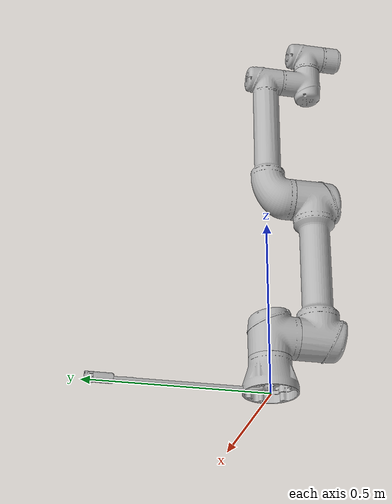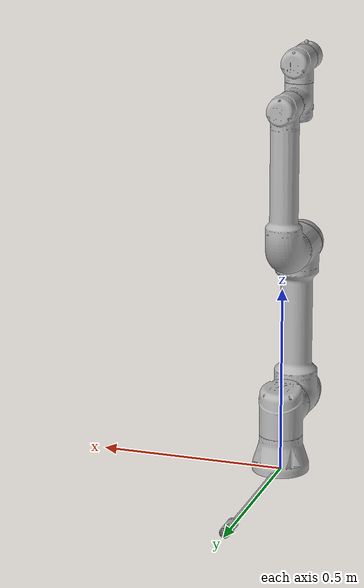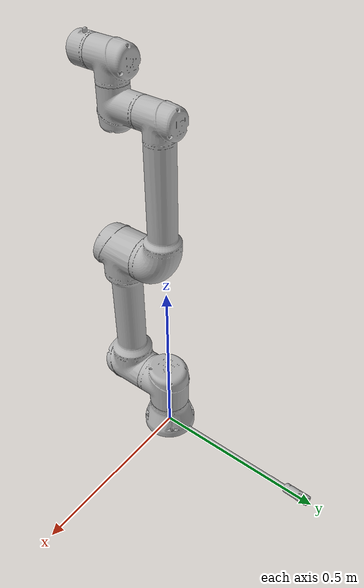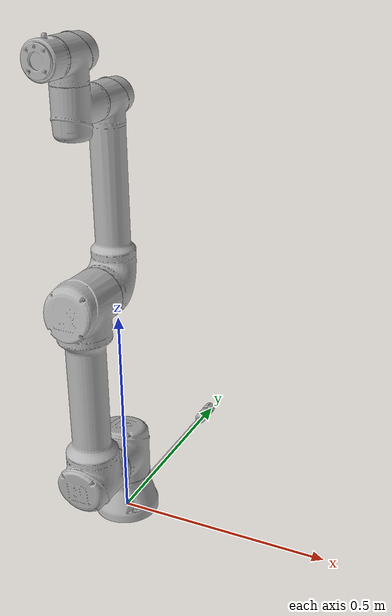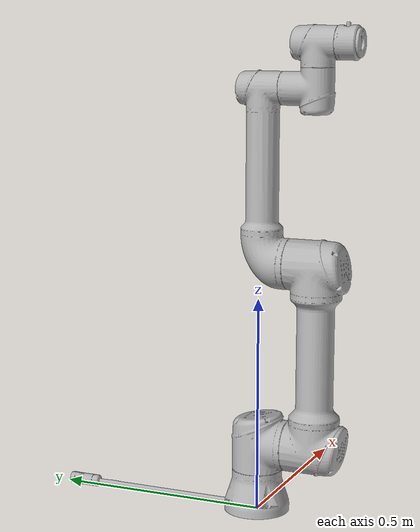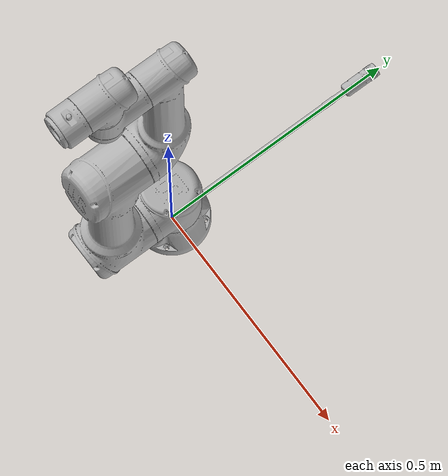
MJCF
<mujoco model="ur5e_description">
  <compiler angle="radian" meshdir="../meshes/"/>

  <asset>
    <mesh name="base_link" file="base_link.STL"/>
    <mesh name="link1" file="link1.STL"/>
    <mesh name="link2" file="link2.STL"/>
    <mesh name="link3" file="link3.STL"/>
    <mesh name="link4" file="link4.STL"/>
    <mesh name="link5" file="link5.STL"/>
    <mesh name="link6" file="link6.STL"/>
  </asset>

  <worldbody>
    <geom type="mesh" contype="0" conaffinity="0" group="1" density="0" rgba="0.69804 0.69804 0.69804 1" mesh="base_link"/>
    <geom type="mesh" rgba="0.69804 0.69804 0.69804 1" mesh="base_link"/>
    <body name="link1" pos="0 0 0.1623">
      <inertial pos="-3.5494e-07 -0.010911 0.00011705" quat="0.964845 0.262819 2.53211e-06 -4.29453e-05" mass="1.6078" diaginertia="0.0039246 0.00350352 0.00328688"/>
      <joint name="joint1" pos="0 0 0" axis="0 0 -1" range="-3.14 3.14" actuatorfrcrange="-30 30"/>
      <geom type="mesh" contype="0" conaffinity="0" group="1" density="0" rgba="0.69804 0.69804 0.69804 1" mesh="link1"/>
      <geom type="mesh" rgba="0.69804 0.69804 0.69804 1" mesh="link1"/>
      <body name="link2" pos="0 -0.1378 0" quat="0.499998 0.5 -0.5 0.500002">
        <inertial pos="0.2125 1.6585e-06 0.00010918" quat="0.499944 0.500063 0.499936 0.500057" mass="3.4818" diaginertia="0.14143 0.14027 0.0074186"/>
        <joint name="joint2" pos="0 0 0" axis="0 0 1" range="-3.14 3.14" actuatorfrcrange="-30 30"/>
        <geom type="mesh" contype="0" conaffinity="0" group="1" density="0" rgba="0.69804 0.69804 0.69804 1" mesh="link2"/>
        <geom type="mesh" rgba="0.69804 0.69804 0.69804 1" mesh="link2"/>
        <body name="link3" pos="0.425 0 0" quat="0.999984 0 0.00573597 0">
          <inertial pos="0.17967 -9.4513e-06 -0.12413" quat="0.479481 0.52036 0.505409 0.493847" mass="3.7588" diaginertia="0.0683423 0.0679813 0.00373902"/>
          <joint name="joint3" pos="0 0 0" axis="-0.011472 0 0.999934" range="-3.14 3.14" actuatorfrcrange="-30 30"/>
          <geom type="mesh" contype="0" conaffinity="0" group="1" density="0" rgba="0.69804 0.69804 0.69804 1" mesh="link3"/>
          <geom type="mesh" rgba="0.69804 0.69804 0.69804 1" mesh="link3"/>
          <body name="link4" pos="0.39228 0 0" quat="0.707094 0.00405593 -0.00405595 -0.707096">
            <inertial pos="7.9407e-06 -0.0025972 -0.018321" quat="0.997958 0.0638666 0.000329273 0.000202224" mass="0.65799" diaginertia="0.0010918 0.000887718 0.000682881"/>
            <joint name="joint4" pos="0 0 0" axis="0 0 1" range="-3.14 3.14" actuatorfrcrange="-30 30"/>
            <geom type="mesh" contype="0" conaffinity="0" group="1" density="0" rgba="0.69804 0.69804 0.69804 1" mesh="link4"/>
            <geom type="mesh" rgba="0.69804 0.69804 0.69804 1" mesh="link4"/>
            <body name="link5" pos="0 0.0997 0" quat="0.707105 -0.707108 0 0">
              <inertial pos="-8.7675e-06 0.0031539 -0.0076987" quat="0.683181 0.730248 -0.000695742 0.00103843" mass="0.54031" diaginertia="0.000698251 0.000604019 0.000491241"/>
              <joint name="joint5" pos="0 0 0" axis="0 0 1" range="-3.14 3.14" actuatorfrcrange="-30 30"/>
              <geom type="mesh" contype="0" conaffinity="0" group="1" density="0" rgba="0.69804 0.69804 0.69804 1" mesh="link5"/>
              <geom type="mesh" rgba="0.69804 0.69804 0.69804 1" mesh="link5"/>
              <body name="link6" pos="0 -0.0996 -0.00049929" quat="0.707105 0.707108 0 0">
                <inertial pos="1.1786e-09 0.0004813 -0.028276" quat="-0.00194028 0.707104 -0.00192227 0.707104" mass="0.21893" diaginertia="0.000150861 0.000121379 0.00012067"/>
                <joint name="joint6" pos="0 0 0" axis="0 0 1" range="-3.14 3.14" actuatorfrcrange="-30 30"/>
                <geom type="mesh" contype="0" conaffinity="0" group="1" density="0" rgba="0.69804 0.69804 0.69804 1" mesh="link6"/>
                <geom type="mesh" rgba="0.69804 0.69804 0.69804 1" mesh="link6"/>
              </body>
            </body>
          </body>
        </body>
      </body>
    </body>
  </worldbody>
</mujoco>
